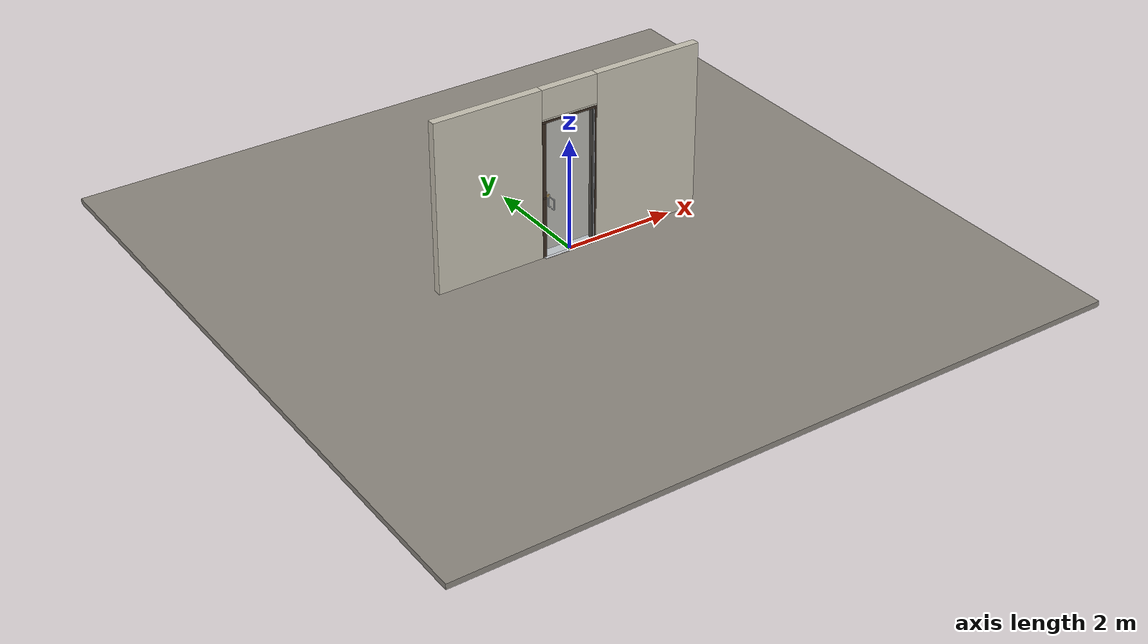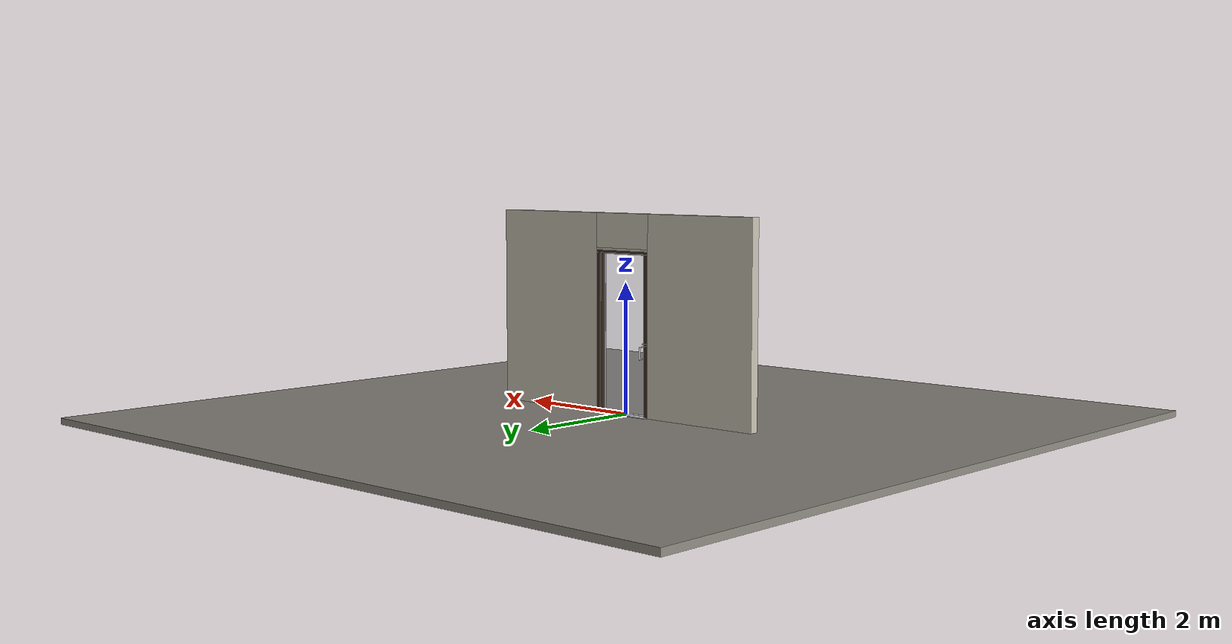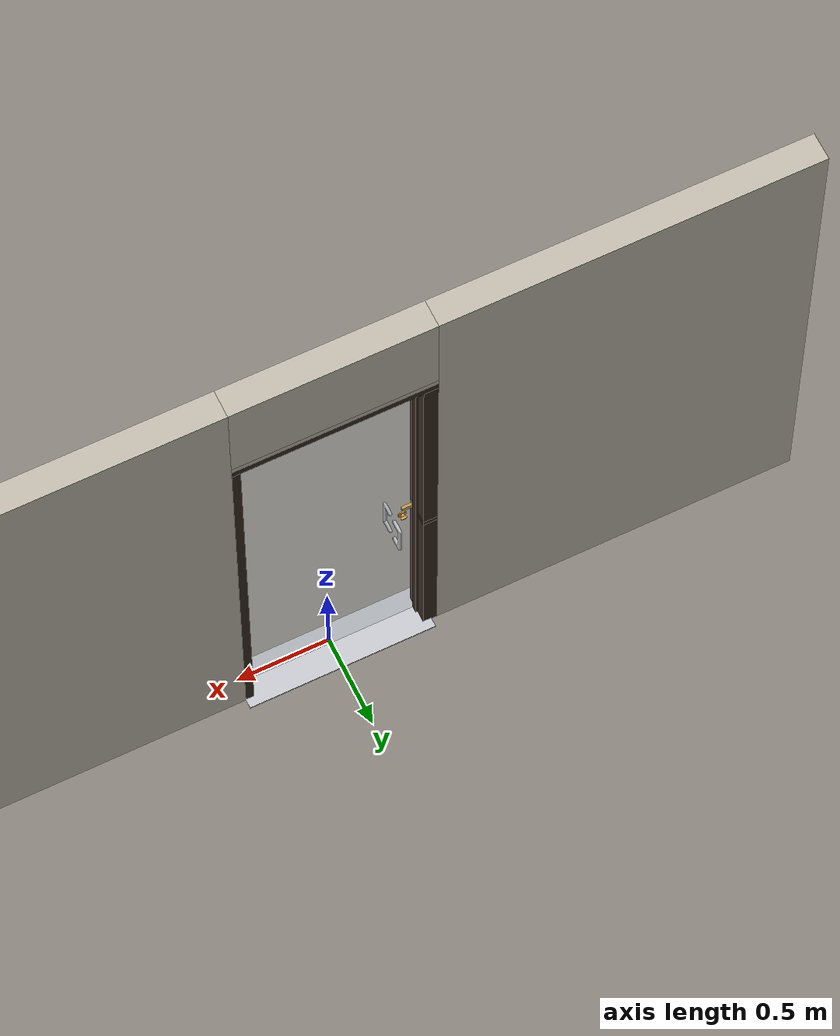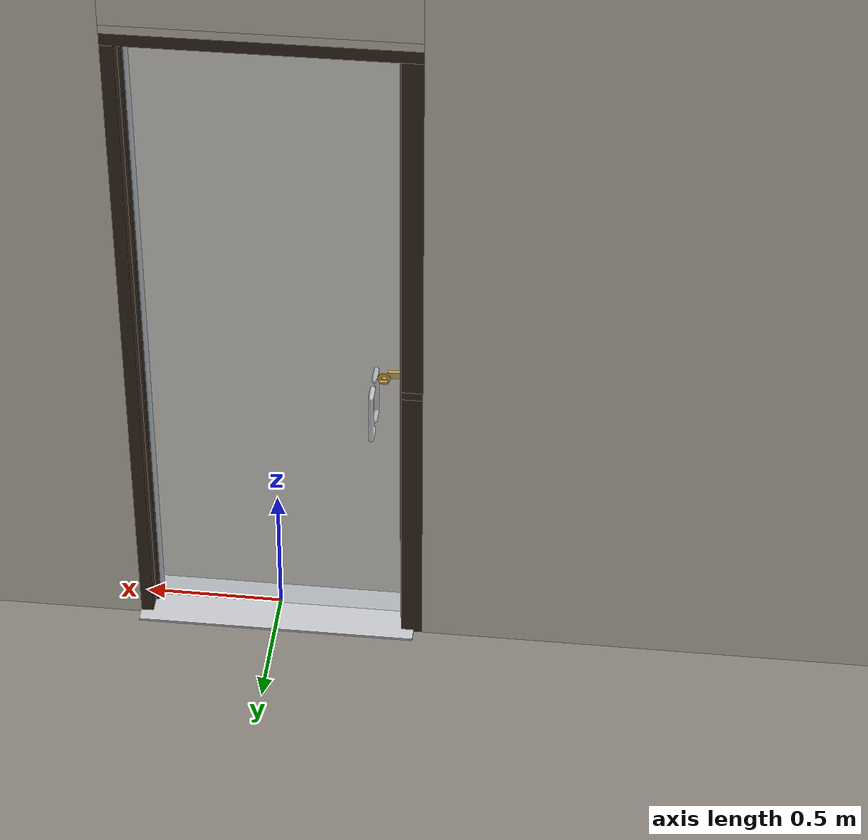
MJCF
<?xml version="1.0" ?>
<mujoco model="db0227_swing_single_simple">
  <compiler angle="radian" meshdir="../../hardware" texturedir="../../textures" autolimits="true" inertiafromgeom="false"/>
  <option timestep="0.002" integrator="implicitfast" cone="elliptic" impratio="10" noslip_iterations="3">
    <flag multiccd="enable"/>
  </option>
  <size memory="16M"/>
  <default>
    <geom condim="4" solref="0.005 1" solimp="0.95 0.99 0.001"/>
    <joint solreflimit="0.005 1" solimplimit="0.95 0.99 0.001"/>
    <tendon solreflimit="0.005 1"/>
    <equality solref="0.002 1"/>
  </default>
  <visual>
    <headlight ambient="0.4 0.4 0.4" diffuse="0.7 0.7 0.7" specular="0.2 0.2 0.2"/>
    <quality shadowsize="4096"/>
    <map znear="0.01" zfar="60"/>
  </visual>
  <asset>
    <mesh name="pull_1e5d69a91a" file="pull_1e5d69a91a.obj"/>
    <mesh name="thumbturn_eb5c9899a3" file="thumbturn_eb5c9899a3.obj"/>
    <material name="mat_floor" rgba="0.55 0.53 0.5 1" specular="0.2" shininess="0.15" reflectance="0"/>
    <material name="mat_wall" rgba="0.78 0.76 0.7 1" specular="0.2" shininess="0.1" reflectance="0"/>
    <material name="mat_leaf" rgba="0.85 0.92 0.95 0.25" specular="0.2" shininess="0.95" reflectance="0.1"/>
    <material name="mat_glass_leaf" rgba="0.85 0.92 0.95 0.25" specular="0.2" shininess="0.95" reflectance="0.1"/>
    <material name="mat_patch" rgba="0.75 0.76 0.77 1" specular="0.8" shininess="0.65" reflectance="0.4"/>
    <material name="mat_hinge" rgba="0.65 0.66 0.68 1" specular="0.74" shininess="0.5" reflectance="0.36"/>
    <material name="mat_op_stainless" rgba="0.75 0.76 0.77 1" specular="0.8" shininess="0.65" reflectance="0.4"/>
    <material name="mat_deadbolt" rgba="0.85 0.66 0.3 1" specular="0.8" shininess="0.75" reflectance="0.4"/>
    <material name="mat_frame" rgba="0.22 0.17 0.13 1" specular="0.8" shininess="0.6" reflectance="0.4"/>
    <material name="mat_seal" rgba="0.1 0.1 0.1 1" specular="0.2" shininess="0.1" reflectance="0"/>
    <material name="mat_threshold" rgba="0.8 0.81 0.83 1" specular="0.8" shininess="0.6" reflectance="0.4"/>
    <material name="mat_closer" rgba="0.75 0.76 0.77 1" specular="0.8" shininess="0.65" reflectance="0.4"/>
    <texture name="skybox" type="skybox" builtin="gradient" rgb1="0.6 0.7 0.85" rgb2="0.9 0.92 0.95" width="256" height="256"/>
  </asset>
  <worldbody>
    <light name="sun" pos="1.5 -2.5 4" dir="-0.3 0.5 -0.8" directional="true" diffuse="0.8 0.8 0.8" specular="0.3 0.3 0.3" castshadow="true"/>
    <light name="fill" pos="-1.5 2.5 3" dir="0.3 -0.5 -0.7" directional="true" diffuse="0.35 0.35 0.4" castshadow="false"/>
    <camera name="robot_view" pos="0 -2.879812 2.043887" xyaxes="1 0 0 0 0.26963 0.962964" fovy="52"/>
    <camera name="far_view" pos="0 2.965813 2.043887" xyaxes="-1 0 0 0 -0.26963 0.962964" fovy="52"/>
    <camera name="iso" pos="-2.221337 -2.412162 2.511538" xyaxes="0.741536 -0.670913 0 0.242917 0.268487 0.932151" fovy="46"/>
    <camera name="detail_handle" pos="-0.1715 -0.8825 1.245" xyaxes="0.97561 0.219512 0 -0.070934 0.315262 0.94635" fovy="38"/>
    <geom name="floor" type="box" size="6 6 0.05" pos="0 0 -0.05" material="mat_floor" group="0" contype="1" conaffinity="1" friction="0.8 0.005 0.0001" density="2400"/>
    <geom name="wall_left" type="box" size="0.98225 0.0725 1.5255" pos="-1.51775 0.043 1.5255" material="mat_wall" group="0" contype="1" conaffinity="1" friction="0.6 0.005 0.0001" density="800"/>
    <geom name="wall_right" type="box" size="0.99725 0.0725 1.5255" pos="1.50275 0.043 1.5255" material="mat_wall" group="0" contype="1" conaffinity="1" friction="0.6 0.005 0.0001" density="800"/>
    <geom name="wall_header" type="box" size="0.5205 0.0725 0.2625" pos="-0.015 0.043 2.7885" material="mat_wall" group="0" contype="1" conaffinity="1" friction="0.6 0.005 0.0001" density="800"/>
    <geom name="leaf_deadbolt_strike_b" type="box" size="0.0155 0.003 0.0005" pos="-0.46 0 1.0865" quat="0.5 0.5 0.5 0.5" material="mat_deadbolt" group="1" contype="0" conaffinity="0" density="7800"/>
    <geom name="leaf_deadbolt_strike_l" type="box" size="0.003 0.0155 0.0005" pos="-0.46 -0.0125 1.105" quat="0.5 0.5 0.5 0.5" material="mat_deadbolt" group="1" contype="0" conaffinity="0" density="7800"/>
    <geom name="leaf_deadbolt_strike_t" type="box" size="0.0155 0.003 0.0005" pos="-0.46 0 1.1235" quat="0.5 0.5 0.5 0.5" material="mat_deadbolt" group="1" contype="0" conaffinity="0" density="7800"/>
    <geom name="leaf_deadbolt_strike_r" type="box" size="0.003 0.0155 0.0005" pos="-0.46 0.0125 1.105" quat="0.5 0.5 0.5 0.5" material="mat_deadbolt" group="1" contype="0" conaffinity="0" density="7800"/>
    <geom name="jamb_hinge" type="box" size="0.0225 0.0725 1.2255" pos="0.483 0.043 1.2255" material="mat_frame" group="0" contype="1" conaffinity="1" friction="0.6 0.005 0.0001" density="300"/>
    <geom name="strike_1105_wall_n" type="box" size="0.0375 0.053 0.0155" pos="-0.498 0.0625 1.105" material="mat_frame" group="0" contype="1" conaffinity="1" friction="0.6 0.005 0.0001" density="300"/>
    <geom name="strike_1105_wall_p" type="box" size="0.0375 0.01 0.0155" pos="-0.498 -0.0195 1.105" material="mat_frame" group="0" contype="1" conaffinity="1" friction="0.6 0.005 0.0001" density="300"/>
    <geom name="strike_1105_back" type="box" size="0.0228 0.0095 0.0155" pos="-0.5127 0 1.105" material="mat_frame" group="0" contype="1" conaffinity="1" friction="0.6 0.005 0.0001" density="300"/>
    <geom name="jamb_strike_0" type="box" size="0.0375 0.0725 0.54475" pos="-0.498 0.043 0.54475" material="mat_frame" group="0" contype="1" conaffinity="1" friction="0.6 0.005 0.0001" density="300"/>
    <geom name="jamb_strike_1" type="box" size="0.0375 0.0725 0.66525" pos="-0.498 0.043 1.78575" material="mat_frame" group="0" contype="1" conaffinity="1" friction="0.6 0.005 0.0001" density="300"/>
    <geom name="jamb_head" type="box" size="0.5205 0.0725 0.0225" pos="-0.015 0.043 2.4735" material="mat_frame" group="0" contype="1" conaffinity="1" friction="0.6 0.005 0.0001" density="300"/>
    <geom name="head_stud" type="box" size="0.5205 0.0725 0.015" pos="-0.015 0.043 2.511" material="mat_wall" group="0" contype="1" conaffinity="1" friction="0.6 0.005 0.0001" density="500"/>
    <geom name="stop_hinge" type="box" size="0.0055 0.016 1.2255" pos="0.455 0.039 1.2255" material="mat_frame" group="0" contype="1" conaffinity="1" friction="0.6 0.005 0.0001" density="300"/>
    <geom name="stop_strike" type="box" size="0.0055 0.016 1.2255" pos="-0.455 0.039 1.2255" material="mat_frame" group="0" contype="1" conaffinity="1" friction="0.6 0.005 0.0001" density="300"/>
    <geom name="stop_head" type="box" size="0.4605 0.016 0.0055" pos="0 0.039 2.4455" material="mat_frame" group="0" contype="1" conaffinity="1" friction="0.6 0.005 0.0001" density="300"/>
    <geom name="seal_hinge" type="box" size="0.004 0.002 1.2255" pos="0.4575 0.0245 1.2255" material="mat_seal" group="1" contype="0" conaffinity="0" density="1100"/>
    <geom name="seal_strike" type="box" size="0.004 0.002 1.2255" pos="-0.4575 0.0245 1.2255" material="mat_seal" group="1" contype="0" conaffinity="0" density="1100"/>
    <geom name="seal_head" type="box" size="0.4405 0.002 0.008" pos="0 0.0245 2.439" material="mat_seal" group="1" contype="0" conaffinity="0" density="1100"/>
    <geom name="threshold" type="box" size="0.5055 0.1225 0.004" pos="0 0.043 0.004" material="mat_threshold" group="0" contype="1" conaffinity="1" friction="0.6 0.005 0.0001" density="2700"/>
    <geom name="floor_spring_cover" type="box" size="0.17 0.06 0.002" pos="0.3405 0 0.002" material="mat_closer" group="1" contype="0" conaffinity="0" density="7900"/>
    <site name="approach_point" pos="0 -1.5 0" quat="1 0 0 0" size="0.05" rgba="0.2 0.9 0.2 0.5" group="4"/>
    <site name="goal_point" pos="0 1.5 0" quat="1 0 0 0" size="0.05" rgba="0.2 0.9 0.2 0.5" group="4"/>
    <site name="door_plane_center" pos="0 0 1.2255" quat="1 0 0 0" size="0.02" rgba="0.2 0.9 0.2 0.5" group="4"/>
    <body name="leaf" pos="0.4605 0 0">
      <inertial pos="-0.444522 -0.001228 1.225386" mass="111.119739" quat="0.501212 -0.497621 0.502372 0.498781" diaginertia="8.443067152 54.557537121 62.945256908"/>
      <joint name="leaf_hinge" type="hinge" axis="0 0 1" pos="-0.003 -0.0295 0" limited="true" range="0 1.832596" solreflimit="0.02 1" damping="8.307281" frictionloss="2.640611" stiffness="31.258031" springref="-2.073067" armature="0.02"/>
      <geom name="leaf_glass" type="box" size="0.457 0.0225 1.219" pos="-0.46 0 1.228" material="mat_glass_leaf" group="0" contype="1" conaffinity="1" friction="0.4 0.005 0.0001" density="1"/>
      <geom name="hinge_continuous" type="cylinder" size="0.0136 1.209" pos="-0.003 -0.0295 1.228" material="mat_hinge" group="1" contype="0" conaffinity="0" density="2700"/>
      <geom name="leaf_pull_n" type="mesh" mesh="pull_1e5d69a91a" pos="-0.812 -0.0225 0.965" quat="0 0 -0.707107 0.707107" material="mat_op_stainless" group="1" contype="0" conaffinity="0" density="3000"/>
      <geom name="leaf_pull_col_n" type="capsule" size="0.0095 0.08" pos="-0.812 -0.0825 0.965" material="mat_op_stainless" group="3" contype="1" conaffinity="1" rgba="0.8 0.3 0.3 0.25" friction="0.7 0.01 0.0001" density="3000"/>
      <geom name="leaf_pull_p" type="mesh" mesh="pull_1e5d69a91a" pos="-0.812 0.0225 0.965" quat="0 0 0.707107 0.707107" material="mat_op_stainless" group="1" contype="0" conaffinity="0" density="3000"/>
      <geom name="leaf_pull_col_p" type="capsule" size="0.0095 0.08" pos="-0.812 0.0825 0.965" material="mat_op_stainless" group="3" contype="1" conaffinity="1" rgba="0.8 0.3 0.3 0.25" friction="0.7 0.01 0.0001" density="3000"/>
      <geom name="leaf_deadbolt_faceplate" type="box" size="0.0006 0.014 0.0245" pos="-0.9164 0 1.105" material="mat_deadbolt" group="1" contype="0" conaffinity="0" density="8500"/>
      <site name="leaf_pull_grip_n" pos="-0.812 -0.0825 0.965" quat="1 0 0 0" size="0.012" rgba="0.2 0.9 0.2 0.5" group="4"/>
      <site name="leaf_pull_grip_p" pos="-0.812 0.0825 0.965" quat="1 0 0 0" size="0.012" rgba="0.2 0.9 0.2 0.5" group="4"/>
      <site name="leaf_edge_mid" pos="-0.917 0 1.219" quat="1 0 0 0" size="0.02" rgba="0.2 0.9 0.2 0.5" group="4"/>
      <body name="leaf_deadbolt" pos="-0.917 0 1.105">
        <inertial pos="0.0277 0 0" mass="0.18836" quat="0 0 0.707107 0.707107" diaginertia="0.000013829 0.000052194 0.000057986"/>
        <joint name="leaf_deadbolt_slide" type="slide" axis="1 0 0" limited="true" range="0 0.0254" damping="5" frictionloss="1.5" armature="0.1" ref="0.0254"/>
        <geom name="leaf_deadbolt_box" type="box" size="0.0277 0.008 0.0125" pos="0.0277 0 0" material="mat_deadbolt" group="0" contype="1" conaffinity="1" friction="0.3 0.005 0.0001" density="8500"/>
      </body>
      <body name="leaf_deadbolt_thumbturn" pos="-0.852 0.0225 1.105">
        <inertial pos="0 0.012928 0" mass="0.178946" quat="0.000001 -0.707107 0.707107 -0.000001" diaginertia="0.000026045 0.000026215 0.000032438"/>
        <joint name="leaf_deadbolt_thumbturn_hinge" type="hinge" axis="0 -1 0" limited="true" range="0 1.5708" damping="0.05" frictionloss="0.3" armature="0.005" ref="1.5708"/>
        <geom name="leaf_deadbolt_thumbturn_mesh" type="mesh" mesh="thumbturn_eb5c9899a3" pos="0 0 0" quat="0.500001 -0.500001 0.499999 0.499999" material="mat_deadbolt" group="0" contype="1" conaffinity="1" friction="0.6 0.005 0.0001" density="7100"/>
        <geom name="leaf_deadbolt_thumbturn_col" type="box" size="0.006 0.012 0.016" pos="0 0.02 0" quat="0.707105 0 -0.707108 0" material="mat_deadbolt" group="3" contype="1" conaffinity="1" rgba="0.8 0.3 0.3 0.25" friction="0.6 0.005 0.0001" density="7100"/>
      </body>
    </body>
  </worldbody>
  <equality>
    <joint name="leaf_deadbolt_couple" joint1="leaf_deadbolt_slide" joint2="leaf_deadbolt_thumbturn_hinge" polycoef="0 0.01617 0 0 0" active="true"/>
  </equality>
  <contact>
    <exclude body1="leaf_deadbolt" body2="leaf_deadbolt_thumbturn"/>
  </contact>
  <sensor>
    <jointpos name="leaf_hinge_pos" joint="leaf_hinge"/>
    <jointvel name="leaf_hinge_vel" joint="leaf_hinge"/>
    <jointpos name="leaf_deadbolt_slide_pos" joint="leaf_deadbolt_slide"/>
    <jointvel name="leaf_deadbolt_slide_vel" joint="leaf_deadbolt_slide"/>
    <jointpos name="leaf_deadbolt_thumbturn_hinge_pos" joint="leaf_deadbolt_thumbturn_hinge"/>
    <jointvel name="leaf_deadbolt_thumbturn_hinge_vel" joint="leaf_deadbolt_thumbturn_hinge"/>
  </sensor>
</mujoco>
